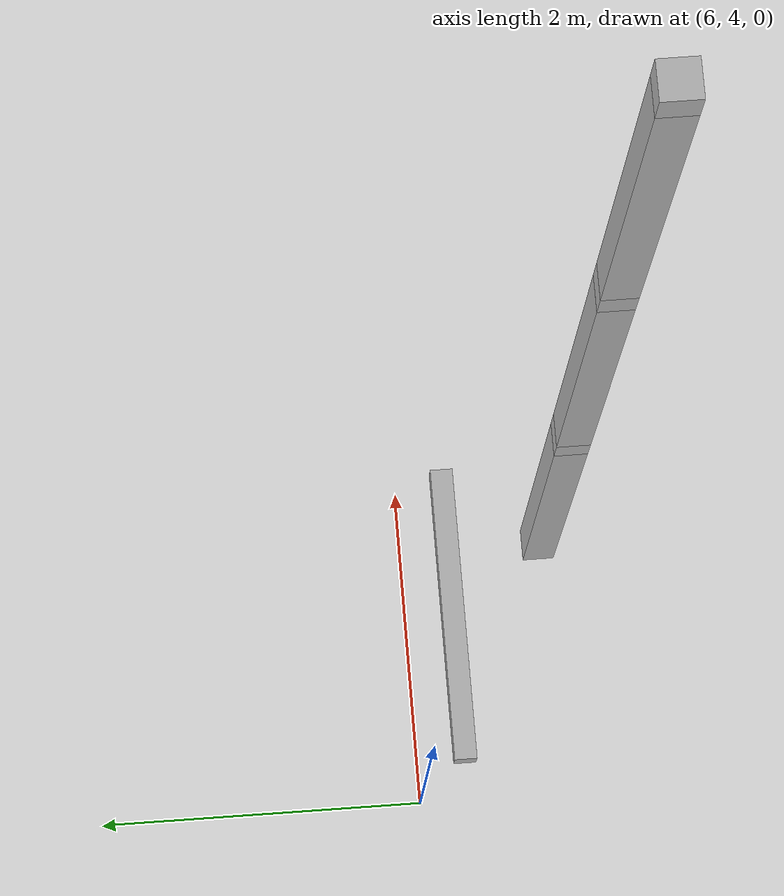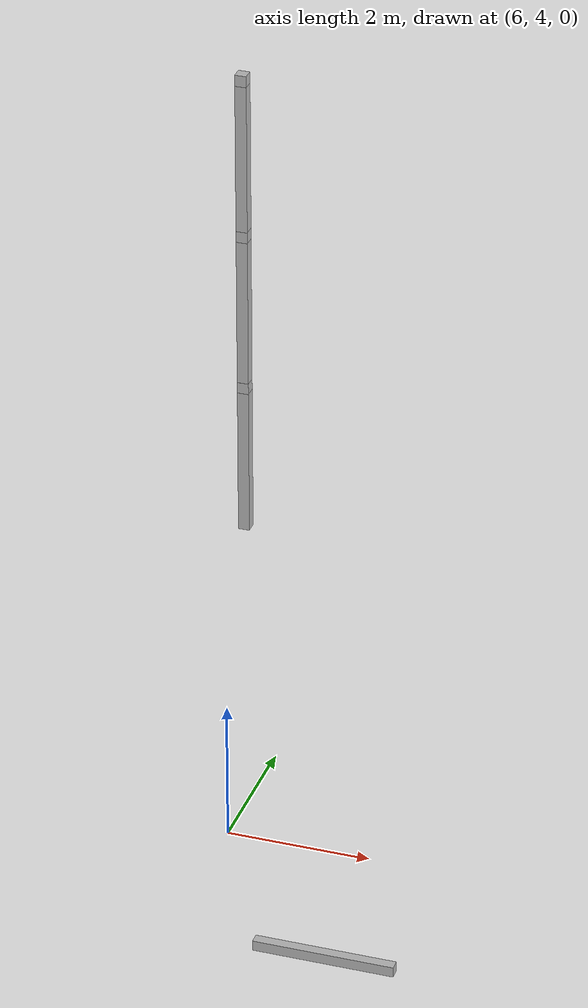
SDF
<sdf version="1.7">
 <world name="default">
  <model name="orthogonal_747_2.000.15_TS">
   <static>1</static>
   <link name="x_link_0_4_6">
    <inertial>
     <mass>1</mass>
     <inertia>
      <ixx>0.166667</ixx>
      <ixy>0</ixy>
      <ixz>0</ixz>
      <iyy>0.166667</iyy>
      <iyz>0</iyz>
      <izz>0.166667</izz>
     </inertia>
    </inertial>
    <pose>13.975 8.6 1.075 0 -0 0</pose>
    <visual name="visual_0">
     <laser_retro>729</laser_retro>
     <geometry><box><size>2 1e-06 0.15</size></box></geometry>
     <material>
      <script><name>Gazebo/Grey</name><uri>file://media/materials/scripts/gazebo.material</uri></script>
      <shader type="pixel"><normal_map>__default__</normal_map></shader>
      <ambient>0.678 0.498 0.659 1</ambient>
      <diffuse>0.7 0.7 0.7 1</diffuse>
      <specular>0.01 0.01 0.01 1</specular>
      <emissive>0 0 0 1</emissive>
     </material>
     <pose>0 -0.075 0 0 -0 0</pose>
     <transparency>1</transparency>
    </visual>
    <visual name="visual_1">
     <laser_retro>730</laser_retro>
     <geometry><box><size>2 1e-06 0.15</size></box></geometry>
     <material>
      <script><name>Gazebo/Grey</name><uri>file://media/materials/scripts/gazebo.material</uri></script>
      <shader type="pixel"><normal_map>__default__</normal_map></shader>
      <ambient>0.447 0.624 0.812 1</ambient>
      <diffuse>0.7 0.7 0.7 1</diffuse>
      <specular>0.01 0.01 0.01 1</specular>
      <emissive>0 0 0 1</emissive>
     </material>
     <pose>0 0.075 0 0 -0 0</pose>
     <transparency>1</transparency>
    </visual>
    <visual name="visual_2">
     <laser_retro>731</laser_retro>
     <geometry><box><size>2 0.15 1e-06</size></box></geometry>
     <material>
      <script><name>Gazebo/Grey</name><uri>file://media/materials/scripts/gazebo.material</uri></script>
      <shader type="pixel"><normal_map>__default__</normal_map></shader>
      <ambient>0.988 0.686 0.243 1</ambient>
      <diffuse>0.7 0.7 0.7 1</diffuse>
      <specular>0.01 0.01 0.01 1</specular>
      <emissive>0 0 0 1</emissive>
     </material>
     <pose>0 0 -0.075 0 -0 0</pose>
     <transparency>1</transparency>
    </visual>
    <visual name="visual_3">
     <laser_retro>732</laser_retro>
     <geometry><box><size>1e-06 0.15 0.15</size></box></geometry>
     <material>
      <script><name>Gazebo/Grey</name><uri>file://media/materials/scripts/gazebo.material</uri></script>
      <shader type="pixel"><normal_map>__default__</normal_map></shader>
      <ambient>0.988 0.914 0.31 1</ambient>
      <diffuse>0.7 0.7 0.7 1</diffuse>
      <specular>0.01 0.01 0.01 1</specular>
      <emissive>0 0 0 1</emissive>
     </material>
     <pose>1 0 0 0 -0 0</pose>
     <transparency>1</transparency>
    </visual>
    <visual name="visual_4">
     <laser_retro>733</laser_retro>
     <geometry><box><size>2 0.15 1e-06</size></box></geometry>
     <material>
      <script><name>Gazebo/Grey</name><uri>file://media/materials/scripts/gazebo.material</uri></script>
      <shader type="pixel"><normal_map>__default__</normal_map></shader>
      <ambient>0.937 0.161 0.161 1</ambient>
      <diffuse>0.7 0.7 0.7 1</diffuse>
      <specular>0.01 0.01 0.01 1</specular>
      <emissive>0 0 0 1</emissive>
     </material>
     <pose>0 0 0.075 0 -0 0</pose>
     <transparency>1</transparency>
    </visual>
    <visual name="visual_5">
     <laser_retro>734</laser_retro>
     <geometry><box><size>1e-06 0.15 0.15</size></box></geometry>
     <material>
      <script><name>Gazebo/Grey</name><uri>file://media/materials/scripts/gazebo.material</uri></script>
      <shader type="pixel"><normal_map>__default__</normal_map></shader>
      <ambient>0.541 0.886 0.204 1</ambient>
      <diffuse>0.7 0.7 0.7 1</diffuse>
      <specular>0.01 0.01 0.01 1</specular>
      <emissive>0 0 0 1</emissive>
     </material>
     <pose>-1 0 0 0 -0 0</pose>
     <transparency>1</transparency>
    </visual>
    <visual name="visual_texture">
     <geometry><box><size>1.9998 0.149985 0.149985</size></box></geometry>
     <material>
      <script>
       <uri>model://BASE_MODELS/simple_block_v2_textured/materials/scripts</uri>
       <uri>model://BASE_MODELS/simple_block_v2_textured/materials/textures</uri>
       <name>metal</name>
      </script>
     </material>
     <laser_retro>735</laser_retro>
    </visual>
    <collision name="collision">
     <geometry><box><size>2 0.15 0.15</size></box></geometry>
     <surface>
      <friction>
       <ode><mu>1</mu><mu2>1</mu2><fdir1>0 0 0</fdir1><slip1>0</slip1><slip2>0</slip2></ode>
       <torsional>
        <coefficient>1</coefficient>
        <patch_radius>0</patch_radius>
        <surface_radius>0</surface_radius>
        <use_patch_radius>1</use_patch_radius>
        <ode><slip>0</slip></ode>
       </torsional>
      </friction>
      <bounce><restitution_coefficient>0</restitution_coefficient><threshold>1e+06</threshold></bounce>
      <contact>
       <collide_without_contact>0</collide_without_contact>
       <collide_without_contact_bitmask>1</collide_without_contact_bitmask>
       <collide_bitmask>1</collide_bitmask>
       <ode>
        <soft_cfm>0</soft_cfm>
        <soft_erp>0.2</soft_erp>
        <kp>1e+13</kp>
        <kd>1</kd>
        <max_vel>0.01</max_vel>
        <min_depth>0</min_depth>
       </ode>
       <bullet>
        <split_impulse>1</split_impulse>
        <split_impulse_penetration_threshold>-0.01</split_impulse_penetration_threshold>
        <soft_cfm>0</soft_cfm>
        <soft_erp>0.2</soft_erp>
        <kp>1e+13</kp>
        <kd>1</kd>
       </bullet>
      </contact>
     </surface>
    </collision>
   </link>
   <link name="u_link_4_4_6">
    <inertial>
     <mass>1</mass>
     <inertia>
      <ixx>0.166667</ixx>
      <ixy>0</ixy>
      <ixz>0</ixz>
      <iyy>0.166667</iyy>
      <iyz>0</iyz>
      <izz>0.166667</izz>
     </inertia>
    </inertial>
    <pose>12.9 8.6 9.675 0 -0 0</pose>
    <visual name="visual_0">
     <laser_retro>4334</laser_retro>
     <geometry><box><size>0.15 1e-06 0.15</size></box></geometry>
     <material>
      <script><name>Gazebo/Grey</name><uri>file://media/materials/scripts/gazebo.material</uri></script>
      <shader type="pixel"><normal_map>__default__</normal_map></shader>
      <ambient>0.678 0.498 0.659 1</ambient>
      <diffuse>0.7 0.7 0.7 1</diffuse>
      <specular>0.01 0.01 0.01 1</specular>
      <emissive>0 0 0 1</emissive>
     </material>
     <pose>0 -0.075 0 0 -0 0</pose>
     <transparency>1</transparency>
    </visual>
    <visual name="visual_1">
     <laser_retro>4335</laser_retro>
     <geometry><box><size>0.15 1e-06 0.15</size></box></geometry>
     <material>
      <script><name>Gazebo/Grey</name><uri>file://media/materials/scripts/gazebo.material</uri></script>
      <shader type="pixel"><normal_map>__default__</normal_map></shader>
      <ambient>0.447 0.624 0.812 1</ambient>
      <diffuse>0.7 0.7 0.7 1</diffuse>
      <specular>0.01 0.01 0.01 1</specular>
      <emissive>0 0 0 1</emissive>
     </material>
     <pose>0 0.075 0 0 -0 0</pose>
     <transparency>1</transparency>
    </visual>
    <visual name="visual_2">
     <laser_retro>4336</laser_retro>
     <geometry><box><size>0.15 0.15 1e-06</size></box></geometry>
     <material>
      <script><name>Gazebo/Grey</name><uri>file://media/materials/scripts/gazebo.material</uri></script>
      <shader type="pixel"><normal_map>__default__</normal_map></shader>
      <ambient>0.988 0.686 0.243 1</ambient>
      <diffuse>0.7 0.7 0.7 1</diffuse>
      <specular>0.01 0.01 0.01 1</specular>
      <emissive>0 0 0 1</emissive>
     </material>
     <pose>0 0 -0.075 0 -0 0</pose>
     <transparency>1</transparency>
    </visual>
    <visual name="visual_3">
     <laser_retro>4337</laser_retro>
     <geometry><box><size>1e-06 0.15 0.15</size></box></geometry>
     <material>
      <script><name>Gazebo/Grey</name><uri>file://media/materials/scripts/gazebo.material</uri></script>
      <shader type="pixel"><normal_map>__default__</normal_map></shader>
      <ambient>0.988 0.914 0.31 1</ambient>
      <diffuse>0.7 0.7 0.7 1</diffuse>
      <specular>0.01 0.01 0.01 1</specular>
      <emissive>0 0 0 1</emissive>
     </material>
     <pose>0.075 0 0 0 -0 0</pose>
     <transparency>1</transparency>
    </visual>
    <visual name="visual_4">
     <laser_retro>4338</laser_retro>
     <geometry><box><size>0.15 0.15 1e-06</size></box></geometry>
     <material>
      <script><name>Gazebo/Grey</name><uri>file://media/materials/scripts/gazebo.material</uri></script>
      <shader type="pixel"><normal_map>__default__</normal_map></shader>
      <ambient>0.937 0.161 0.161 1</ambient>
      <diffuse>0.7 0.7 0.7 1</diffuse>
      <specular>0.01 0.01 0.01 1</specular>
      <emissive>0 0 0 1</emissive>
     </material>
     <pose>0 0 0.075 0 -0 0</pose>
     <transparency>1</transparency>
    </visual>
    <visual name="visual_5">
     <laser_retro>4339</laser_retro>
     <geometry><box><size>1e-06 0.15 0.15</size></box></geometry>
     <material>
      <script><name>Gazebo/Grey</name><uri>file://media/materials/scripts/gazebo.material</uri></script>
      <shader type="pixel"><normal_map>__default__</normal_map></shader>
      <ambient>0.541 0.886 0.204 1</ambient>
      <diffuse>0.7 0.7 0.7 1</diffuse>
      <specular>0.01 0.01 0.01 1</specular>
      <emissive>0 0 0 1</emissive>
     </material>
     <pose>-0.075 0 0 0 -0 0</pose>
     <transparency>1</transparency>
    </visual>
    <visual name="visual_texture">
     <geometry><box><size>0.149985 0.149985 0.149985</size></box></geometry>
     <material>
      <script>
       <uri>model://BASE_MODELS/simple_block_v2_textured/materials/scripts</uri>
       <uri>model://BASE_MODELS/simple_block_v2_textured/materials/textures</uri>
       <name>metal</name>
      </script>
     </material>
     <laser_retro>4340</laser_retro>
    </visual>
    <collision name="collision">
     <geometry><box><size>0.15 0.15 0.15</size></box></geometry>
     <surface>
      <friction>
       <ode><mu>1</mu><mu2>1</mu2><fdir1>0 0 0</fdir1><slip1>0</slip1><slip2>0</slip2></ode>
       <torsional>
        <coefficient>1</coefficient>
        <patch_radius>0</patch_radius>
        <surface_radius>0</surface_radius>
        <use_patch_radius>1</use_patch_radius>
        <ode><slip>0</slip></ode>
       </torsional>
      </friction>
      <bounce><restitution_coefficient>0</restitution_coefficient><threshold>1e+06</threshold></bounce>
      <contact>
       <collide_without_contact>0</collide_without_contact>
       <collide_without_contact_bitmask>1</collide_without_contact_bitmask>
       <collide_bitmask>1</collide_bitmask>
       <ode>
        <soft_cfm>0</soft_cfm>
        <soft_erp>0.2</soft_erp>
        <kp>1e+13</kp>
        <kd>1</kd>
        <max_vel>0.01</max_vel>
        <min_depth>0</min_depth>
       </ode>
       <bullet>
        <split_impulse>1</split_impulse>
        <split_impulse_penetration_threshold>-0.01</split_impulse_penetration_threshold>
        <soft_cfm>0</soft_cfm>
        <soft_erp>0.2</soft_erp>
        <kp>1e+13</kp>
        <kd>1</kd>
       </bullet>
      </contact>
     </surface>
    </collision>
   </link>
   <link name="z_link_4_4_6">
    <inertial>
     <mass>1</mass>
     <inertia>
      <ixx>0.166667</ixx>
      <ixy>0</ixy>
      <ixz>0</ixz>
      <iyy>0.166667</iyy>
      <iyz>0</iyz>
      <izz>0.166667</izz>
     </inertia>
    </inertial>
    <pose>12.9 8.6 8.6 0 -0 0</pose>
    <visual name="visual_0">
     <laser_retro>4341</laser_retro>
     <geometry><box><size>0.15 1e-06 2</size></box></geometry>
     <material>
      <script><name>Gazebo/Grey</name><uri>file://media/materials/scripts/gazebo.material</uri></script>
      <shader type="pixel"><normal_map>__default__</normal_map></shader>
      <ambient>0.678 0.498 0.659 1</ambient>
      <diffuse>0.7 0.7 0.7 1</diffuse>
      <specular>0.01 0.01 0.01 1</specular>
      <emissive>0 0 0 1</emissive>
     </material>
     <pose>0 -0.075 0 0 -0 0</pose>
     <transparency>1</transparency>
    </visual>
    <visual name="visual_1">
     <laser_retro>4342</laser_retro>
     <geometry><box><size>0.15 1e-06 2</size></box></geometry>
     <material>
      <script><name>Gazebo/Grey</name><uri>file://media/materials/scripts/gazebo.material</uri></script>
      <shader type="pixel"><normal_map>__default__</normal_map></shader>
      <ambient>0.447 0.624 0.812 1</ambient>
      <diffuse>0.7 0.7 0.7 1</diffuse>
      <specular>0.01 0.01 0.01 1</specular>
      <emissive>0 0 0 1</emissive>
     </material>
     <pose>0 0.075 0 0 -0 0</pose>
     <transparency>1</transparency>
    </visual>
    <visual name="visual_2">
     <laser_retro>4343</laser_retro>
     <geometry><box><size>0.15 0.15 1e-06</size></box></geometry>
     <material>
      <script><name>Gazebo/Grey</name><uri>file://media/materials/scripts/gazebo.material</uri></script>
      <shader type="pixel"><normal_map>__default__</normal_map></shader>
      <ambient>0.988 0.686 0.243 1</ambient>
      <diffuse>0.7 0.7 0.7 1</diffuse>
      <specular>0.01 0.01 0.01 1</specular>
      <emissive>0 0 0 1</emissive>
     </material>
     <pose>0 0 -1 0 -0 0</pose>
     <transparency>1</transparency>
    </visual>
    <visual name="visual_3">
     <laser_retro>4344</laser_retro>
     <geometry><box><size>1e-06 0.15 2</size></box></geometry>
     <material>
      <script><name>Gazebo/Grey</name><uri>file://media/materials/scripts/gazebo.material</uri></script>
      <shader type="pixel"><normal_map>__default__</normal_map></shader>
      <ambient>0.988 0.914 0.31 1</ambient>
      <diffuse>0.7 0.7 0.7 1</diffuse>
      <specular>0.01 0.01 0.01 1</specular>
      <emissive>0 0 0 1</emissive>
     </material>
     <pose>0.075 0 0 0 -0 0</pose>
     <transparency>1</transparency>
    </visual>
    <visual name="visual_4">
     <laser_retro>4345</laser_retro>
     <geometry><box><size>0.15 0.15 1e-06</size></box></geometry>
     <material>
      <script><name>Gazebo/Grey</name><uri>file://media/materials/scripts/gazebo.material</uri></script>
      <shader type="pixel"><normal_map>__default__</normal_map></shader>
      <ambient>0.937 0.161 0.161 1</ambient>
      <diffuse>0.7 0.7 0.7 1</diffuse>
      <specular>0.01 0.01 0.01 1</specular>
      <emissive>0 0 0 1</emissive>
     </material>
     <pose>0 0 1 0 -0 0</pose>
     <transparency>1</transparency>
    </visual>
    <visual name="visual_5">
     <laser_retro>4346</laser_retro>
     <geometry><box><size>1e-06 0.15 2</size></box></geometry>
     <material>
      <script><name>Gazebo/Grey</name><uri>file://media/materials/scripts/gazebo.material</uri></script>
      <shader type="pixel"><normal_map>__default__</normal_map></shader>
      <ambient>0.541 0.886 0.204 1</ambient>
      <diffuse>0.7 0.7 0.7 1</diffuse>
      <specular>0.01 0.01 0.01 1</specular>
      <emissive>0 0 0 1</emissive>
     </material>
     <pose>-0.075 0 0 0 -0 0</pose>
     <transparency>1</transparency>
    </visual>
    <visual name="visual_texture">
     <geometry><box><size>0.149985 0.149985 1.9998</size></box></geometry>
     <material>
      <script>
       <uri>model://BASE_MODELS/simple_block_v2_textured/materials/scripts</uri>
       <uri>model://BASE_MODELS/simple_block_v2_textured/materials/textures</uri>
       <name>metal</name>
      </script>
     </material>
     <laser_retro>4347</laser_retro>
    </visual>
    <collision name="collision">
     <geometry><box><size>0.15 0.15 2</size></box></geometry>
     <surface>
      <friction>
       <ode><mu>1</mu><mu2>1</mu2><fdir1>0 0 0</fdir1><slip1>0</slip1><slip2>0</slip2></ode>
       <torsional>
        <coefficient>1</coefficient>
        <patch_radius>0</patch_radius>
        <surface_radius>0</surface_radius>
        <use_patch_radius>1</use_patch_radius>
        <ode><slip>0</slip></ode>
       </torsional>
      </friction>
      <bounce><restitution_coefficient>0</restitution_coefficient><threshold>1e+06</threshold></bounce>
      <contact>
       <collide_without_contact>0</collide_without_contact>
       <collide_without_contact_bitmask>1</collide_without_contact_bitmask>
       <collide_bitmask>1</collide_bitmask>
       <ode>
        <soft_cfm>0</soft_cfm>
        <soft_erp>0.2</soft_erp>
        <kp>1e+13</kp>
        <kd>1</kd>
        <max_vel>0.01</max_vel>
        <min_depth>0</min_depth>
       </ode>
       <bullet>
        <split_impulse>1</split_impulse>
        <split_impulse_penetration_threshold>-0.01</split_impulse_penetration_threshold>
        <soft_cfm>0</soft_cfm>
        <soft_erp>0.2</soft_erp>
        <kp>1e+13</kp>
        <kd>1</kd>
       </bullet>
      </contact>
     </surface>
    </collision>
   </link>
   <link name="u_link_5_4_6">
    <inertial>
     <mass>1</mass>
     <inertia>
      <ixx>0.166667</ixx>
      <ixy>0</ixy>
      <ixz>0</ixz>
      <iyy>0.166667</iyy>
      <iyz>0</iyz>
      <izz>0.166667</izz>
     </inertia>
    </inertial>
    <pose>12.9 8.6 11.825 0 -0 0</pose>
    <visual name="visual_0">
     <laser_retro>5237</laser_retro>
     <geometry><box><size>0.15 1e-06 0.15</size></box></geometry>
     <material>
      <script><name>Gazebo/Grey</name><uri>file://media/materials/scripts/gazebo.material</uri></script>
      <shader type="pixel"><normal_map>__default__</normal_map></shader>
      <ambient>0.678 0.498 0.659 1</ambient>
      <diffuse>0.7 0.7 0.7 1</diffuse>
      <specular>0.01 0.01 0.01 1</specular>
      <emissive>0 0 0 1</emissive>
     </material>
     <pose>0 -0.075 0 0 -0 0</pose>
     <transparency>1</transparency>
    </visual>
    <visual name="visual_1">
     <laser_retro>5238</laser_retro>
     <geometry><box><size>0.15 1e-06 0.15</size></box></geometry>
     <material>
      <script><name>Gazebo/Grey</name><uri>file://media/materials/scripts/gazebo.material</uri></script>
      <shader type="pixel"><normal_map>__default__</normal_map></shader>
      <ambient>0.447 0.624 0.812 1</ambient>
      <diffuse>0.7 0.7 0.7 1</diffuse>
      <specular>0.01 0.01 0.01 1</specular>
      <emissive>0 0 0 1</emissive>
     </material>
     <pose>0 0.075 0 0 -0 0</pose>
     <transparency>1</transparency>
    </visual>
    <visual name="visual_2">
     <laser_retro>5239</laser_retro>
     <geometry><box><size>0.15 0.15 1e-06</size></box></geometry>
     <material>
      <script><name>Gazebo/Grey</name><uri>file://media/materials/scripts/gazebo.material</uri></script>
      <shader type="pixel"><normal_map>__default__</normal_map></shader>
      <ambient>0.988 0.686 0.243 1</ambient>
      <diffuse>0.7 0.7 0.7 1</diffuse>
      <specular>0.01 0.01 0.01 1</specular>
      <emissive>0 0 0 1</emissive>
     </material>
     <pose>0 0 -0.075 0 -0 0</pose>
     <transparency>1</transparency>
    </visual>
    <visual name="visual_3">
     <laser_retro>5240</laser_retro>
     <geometry><box><size>1e-06 0.15 0.15</size></box></geometry>
     <material>
      <script><name>Gazebo/Grey</name><uri>file://media/materials/scripts/gazebo.material</uri></script>
      <shader type="pixel"><normal_map>__default__</normal_map></shader>
      <ambient>0.988 0.914 0.31 1</ambient>
      <diffuse>0.7 0.7 0.7 1</diffuse>
      <specular>0.01 0.01 0.01 1</specular>
      <emissive>0 0 0 1</emissive>
     </material>
     <pose>0.075 0 0 0 -0 0</pose>
     <transparency>1</transparency>
    </visual>
    <visual name="visual_4">
     <laser_retro>5241</laser_retro>
     <geometry><box><size>0.15 0.15 1e-06</size></box></geometry>
     <material>
      <script><name>Gazebo/Grey</name><uri>file://media/materials/scripts/gazebo.material</uri></script>
      <shader type="pixel"><normal_map>__default__</normal_map></shader>
      <ambient>0.937 0.161 0.161 1</ambient>
      <diffuse>0.7 0.7 0.7 1</diffuse>
      <specular>0.01 0.01 0.01 1</specular>
      <emissive>0 0 0 1</emissive>
     </material>
     <pose>0 0 0.075 0 -0 0</pose>
     <transparency>1</transparency>
    </visual>
    <visual name="visual_5">
     <laser_retro>5242</laser_retro>
     <geometry><box><size>1e-06 0.15 0.15</size></box></geometry>
     <material>
      <script><name>Gazebo/Grey</name><uri>file://media/materials/scripts/gazebo.material</uri></script>
      <shader type="pixel"><normal_map>__default__</normal_map></shader>
      <ambient>0.541 0.886 0.204 1</ambient>
      <diffuse>0.7 0.7 0.7 1</diffuse>
      <specular>0.01 0.01 0.01 1</specular>
      <emissive>0 0 0 1</emissive>
     </material>
     <pose>-0.075 0 0 0 -0 0</pose>
     <transparency>1</transparency>
    </visual>
    <visual name="visual_texture">
     <geometry><box><size>0.149985 0.149985 0.149985</size></box></geometry>
     <material>
      <script>
       <uri>model://BASE_MODELS/simple_block_v2_textured/materials/scripts</uri>
       <uri>model://BASE_MODELS/simple_block_v2_textured/materials/textures</uri>
       <name>metal</name>
      </script>
     </material>
     <laser_retro>5243</laser_retro>
    </visual>
    <collision name="collision">
     <geometry><box><size>0.15 0.15 0.15</size></box></geometry>
     <surface>
      <friction>
       <ode><mu>1</mu><mu2>1</mu2><fdir1>0 0 0</fdir1><slip1>0</slip1><slip2>0</slip2></ode>
       <torsional>
        <coefficient>1</coefficient>
        <patch_radius>0</patch_radius>
        <surface_radius>0</surface_radius>
        <use_patch_radius>1</use_patch_radius>
        <ode><slip>0</slip></ode>
       </torsional>
      </friction>
      <bounce><restitution_coefficient>0</restitution_coefficient><threshold>1e+06</threshold></bounce>
      <contact>
       <collide_without_contact>0</collide_without_contact>
       <collide_without_contact_bitmask>1</collide_without_contact_bitmask>
       <collide_bitmask>1</collide_bitmask>
       <ode>
        <soft_cfm>0</soft_cfm>
        <soft_erp>0.2</soft_erp>
        <kp>1e+13</kp>
        <kd>1</kd>
        <max_vel>0.01</max_vel>
        <min_depth>0</min_depth>
       </ode>
       <bullet>
        <split_impulse>1</split_impulse>
        <split_impulse_penetration_threshold>-0.01</split_impulse_penetration_threshold>
        <soft_cfm>0</soft_cfm>
        <soft_erp>0.2</soft_erp>
        <kp>1e+13</kp>
        <kd>1</kd>
       </bullet>
      </contact>
     </surface>
    </collision>
   </link>
   <link name="z_link_5_4_6">
    <inertial>
     <mass>1</mass>
     <inertia>
      <ixx>0.166667</ixx>
      <ixy>0</ixy>
      <ixz>0</ixz>
      <iyy>0.166667</iyy>
      <iyz>0</iyz>
      <izz>0.166667</izz>
     </inertia>
    </inertial>
    <pose>12.9 8.6 10.75 0 -0 0</pose>
    <visual name="visual_0">
     <laser_retro>5244</laser_retro>
     <geometry><box><size>0.15 1e-06 2</size></box></geometry>
     <material>
      <script><name>Gazebo/Grey</name><uri>file://media/materials/scripts/gazebo.material</uri></script>
      <shader type="pixel"><normal_map>__default__</normal_map></shader>
      <ambient>0.678 0.498 0.659 1</ambient>
      <diffuse>0.7 0.7 0.7 1</diffuse>
      <specular>0.01 0.01 0.01 1</specular>
      <emissive>0 0 0 1</emissive>
     </material>
     <pose>0 -0.075 0 0 -0 0</pose>
     <transparency>1</transparency>
    </visual>
    <visual name="visual_1">
     <laser_retro>5245</laser_retro>
     <geometry><box><size>0.15 1e-06 2</size></box></geometry>
     <material>
      <script><name>Gazebo/Grey</name><uri>file://media/materials/scripts/gazebo.material</uri></script>
      <shader type="pixel"><normal_map>__default__</normal_map></shader>
      <ambient>0.447 0.624 0.812 1</ambient>
      <diffuse>0.7 0.7 0.7 1</diffuse>
      <specular>0.01 0.01 0.01 1</specular>
      <emissive>0 0 0 1</emissive>
     </material>
     <pose>0 0.075 0 0 -0 0</pose>
     <transparency>1</transparency>
    </visual>
    <visual name="visual_2">
     <laser_retro>5246</laser_retro>
     <geometry><box><size>0.15 0.15 1e-06</size></box></geometry>
     <material>
      <script><name>Gazebo/Grey</name><uri>file://media/materials/scripts/gazebo.material</uri></script>
      <shader type="pixel"><normal_map>__default__</normal_map></shader>
      <ambient>0.988 0.686 0.243 1</ambient>
      <diffuse>0.7 0.7 0.7 1</diffuse>
      <specular>0.01 0.01 0.01 1</specular>
      <emissive>0 0 0 1</emissive>
     </material>
     <pose>0 0 -1 0 -0 0</pose>
     <transparency>1</transparency>
    </visual>
    <visual name="visual_3">
     <laser_retro>5247</laser_retro>
     <geometry><box><size>1e-06 0.15 2</size></box></geometry>
     <material>
      <script><name>Gazebo/Grey</name><uri>file://media/materials/scripts/gazebo.material</uri></script>
      <shader type="pixel"><normal_map>__default__</normal_map></shader>
      <ambient>0.988 0.914 0.31 1</ambient>
      <diffuse>0.7 0.7 0.7 1</diffuse>
      <specular>0.01 0.01 0.01 1</specular>
      <emissive>0 0 0 1</emissive>
     </material>
     <pose>0.075 0 0 0 -0 0</pose>
     <transparency>1</transparency>
    </visual>
    <visual name="visual_4">
     <laser_retro>5248</laser_retro>
     <geometry><box><size>0.15 0.15 1e-06</size></box></geometry>
     <material>
      <script><name>Gazebo/Grey</name><uri>file://media/materials/scripts/gazebo.material</uri></script>
      <shader type="pixel"><normal_map>__default__</normal_map></shader>
      <ambient>0.937 0.161 0.161 1</ambient>
      <diffuse>0.7 0.7 0.7 1</diffuse>
      <specular>0.01 0.01 0.01 1</specular>
      <emissive>0 0 0 1</emissive>
     </material>
     <pose>0 0 1 0 -0 0</pose>
     <transparency>1</transparency>
    </visual>
    <visual name="visual_5">
     <laser_retro>5249</laser_retro>
     <geometry><box><size>1e-06 0.15 2</size></box></geometry>
     <material>
      <script><name>Gazebo/Grey</name><uri>file://media/materials/scripts/gazebo.material</uri></script>
      <shader type="pixel"><normal_map>__default__</normal_map></shader>
      <ambient>0.541 0.886 0.204 1</ambient>
      <diffuse>0.7 0.7 0.7 1</diffuse>
      <specular>0.01 0.01 0.01 1</specular>
      <emissive>0 0 0 1</emissive>
     </material>
     <pose>-0.075 0 0 0 -0 0</pose>
     <transparency>1</transparency>
    </visual>
    <visual name="visual_texture">
     <geometry><box><size>0.149985 0.149985 1.9998</size></box></geometry>
     <material>
      <script>
       <uri>model://BASE_MODELS/simple_block_v2_textured/materials/scripts</uri>
       <uri>model://BASE_MODELS/simple_block_v2_textured/materials/textures</uri>
       <name>metal</name>
      </script>
     </material>
     <laser_retro>5250</laser_retro>
    </visual>
    <collision name="collision">
     <geometry><box><size>0.15 0.15 2</size></box></geometry>
     <surface>
      <friction>
       <ode><mu>1</mu><mu2>1</mu2><fdir1>0 0 0</fdir1><slip1>0</slip1><slip2>0</slip2></ode>
       <torsional>
        <coefficient>1</coefficient>
        <patch_radius>0</patch_radius>
        <surface_radius>0</surface_radius>
        <use_patch_radius>1</use_patch_radius>
        <ode><slip>0</slip></ode>
       </torsional>
      </friction>
      <bounce><restitution_coefficient>0</restitution_coefficient><threshold>1e+06</threshold></bounce>
      <contact>
       <collide_without_contact>0</collide_without_contact>
       <collide_without_contact_bitmask>1</collide_without_contact_bitmask>
       <collide_bitmask>1</collide_bitmask>
       <ode>
        <soft_cfm>0</soft_cfm>
        <soft_erp>0.2</soft_erp>
        <kp>1e+13</kp>
        <kd>1</kd>
        <max_vel>0.01</max_vel>
        <min_depth>0</min_depth>
       </ode>
       <bullet>
        <split_impulse>1</split_impulse>
        <split_impulse_penetration_threshold>-0.01</split_impulse_penetration_threshold>
        <soft_cfm>0</soft_cfm>
        <soft_erp>0.2</soft_erp>
        <kp>1e+13</kp>
        <kd>1</kd>
       </bullet>
      </contact>
     </surface>
    </collision>
   </link>
   <link name="u_link_6_4_6">
    <inertial>
     <mass>1</mass>
     <inertia>
      <ixx>0.166667</ixx>
      <ixy>0</ixy>
      <ixz>0</ixz>
      <iyy>0.166667</iyy>
      <iyz>0</iyz>
      <izz>0.166667</izz>
     </inertia>
    </inertial>
    <pose>12.9 8.6 13.975 0 -0 0</pose>
    <visual name="visual_0">
     <laser_retro>6266</laser_retro>
     <geometry><box><size>0.15 1e-06 0.15</size></box></geometry>
     <material>
      <script><name>Gazebo/Grey</name><uri>file://media/materials/scripts/gazebo.material</uri></script>
      <shader type="pixel"><normal_map>__default__</normal_map></shader>
      <ambient>0.678 0.498 0.659 1</ambient>
      <diffuse>0.7 0.7 0.7 1</diffuse>
      <specular>0.01 0.01 0.01 1</specular>
      <emissive>0 0 0 1</emissive>
     </material>
     <pose>0 -0.075 0 0 -0 0</pose>
     <transparency>1</transparency>
    </visual>
    <visual name="visual_1">
     <laser_retro>6267</laser_retro>
     <geometry><box><size>0.15 1e-06 0.15</size></box></geometry>
     <material>
      <script><name>Gazebo/Grey</name><uri>file://media/materials/scripts/gazebo.material</uri></script>
      <shader type="pixel"><normal_map>__default__</normal_map></shader>
      <ambient>0.447 0.624 0.812 1</ambient>
      <diffuse>0.7 0.7 0.7 1</diffuse>
      <specular>0.01 0.01 0.01 1</specular>
      <emissive>0 0 0 1</emissive>
     </material>
     <pose>0 0.075 0 0 -0 0</pose>
     <transparency>1</transparency>
    </visual>
    <visual name="visual_2">
     <laser_retro>6268</laser_retro>
     <geometry><box><size>0.15 0.15 1e-06</size></box></geometry>
     <material>
      <script><name>Gazebo/Grey</name><uri>file://media/materials/scripts/gazebo.material</uri></script>
      <shader type="pixel"><normal_map>__default__</normal_map></shader>
      <ambient>0.988 0.686 0.243 1</ambient>
      <diffuse>0.7 0.7 0.7 1</diffuse>
      <specular>0.01 0.01 0.01 1</specular>
      <emissive>0 0 0 1</emissive>
     </material>
     <pose>0 0 -0.075 0 -0 0</pose>
     <transparency>1</transparency>
    </visual>
    <visual name="visual_3">
     <laser_retro>6269</laser_retro>
     <geometry><box><size>1e-06 0.15 0.15</size></box></geometry>
     <material>
      <script><name>Gazebo/Grey</name><uri>file://media/materials/scripts/gazebo.material</uri></script>
      <shader type="pixel"><normal_map>__default__</normal_map></shader>
      <ambient>0.988 0.914 0.31 1</ambient>
      <diffuse>0.7 0.7 0.7 1</diffuse>
      <specular>0.01 0.01 0.01 1</specular>
      <emissive>0 0 0 1</emissive>
     </material>
     <pose>0.075 0 0 0 -0 0</pose>
     <transparency>1</transparency>
    </visual>
    <visual name="visual_4">
     <laser_retro>6270</laser_retro>
     <geometry><box><size>0.15 0.15 1e-06</size></box></geometry>
     <material>
      <script><name>Gazebo/Grey</name><uri>file://media/materials/scripts/gazebo.material</uri></script>
      <shader type="pixel"><normal_map>__default__</normal_map></shader>
      <ambient>0.937 0.161 0.161 1</ambient>
      <diffuse>0.7 0.7 0.7 1</diffuse>
      <specular>0.01 0.01 0.01 1</specular>
      <emissive>0 0 0 1</emissive>
     </material>
     <pose>0 0 0.075 0 -0 0</pose>
     <transparency>1</transparency>
    </visual>
    <visual name="visual_5">
     <laser_retro>6271</laser_retro>
     <geometry><box><size>1e-06 0.15 0.15</size></box></geometry>
     <material>
      <script><name>Gazebo/Grey</name><uri>file://media/materials/scripts/gazebo.material</uri></script>
      <shader type="pixel"><normal_map>__default__</normal_map></shader>
      <ambient>0.541 0.886 0.204 1</ambient>
      <diffuse>0.7 0.7 0.7 1</diffuse>
      <specular>0.01 0.01 0.01 1</specular>
      <emissive>0 0 0 1</emissive>
     </material>
     <pose>-0.075 0 0 0 -0 0</pose>
     <transparency>1</transparency>
    </visual>
    <visual name="visual_texture">
     <geometry><box><size>0.149985 0.149985 0.149985</size></box></geometry>
     <material>
      <script>
       <uri>model://BASE_MODELS/simple_block_v2_textured/materials/scripts</uri>
       <uri>model://BASE_MODELS/simple_block_v2_textured/materials/textures</uri>
       <name>metal</name>
      </script>
     </material>
     <laser_retro>6272</laser_retro>
    </visual>
    <collision name="collision">
     <geometry><box><size>0.15 0.15 0.15</size></box></geometry>
     <surface>
      <friction>
       <ode><mu>1</mu><mu2>1</mu2><fdir1>0 0 0</fdir1><slip1>0</slip1><slip2>0</slip2></ode>
       <torsional>
        <coefficient>1</coefficient>
        <patch_radius>0</patch_radius>
        <surface_radius>0</surface_radius>
        <use_patch_radius>1</use_patch_radius>
        <ode><slip>0</slip></ode>
       </torsional>
      </friction>
      <bounce><restitution_coefficient>0</restitution_coefficient><threshold>1e+06</threshold></bounce>
      <contact>
       <collide_without_contact>0</collide_without_contact>
       <collide_without_contact_bitmask>1</collide_without_contact_bitmask>
       <collide_bitmask>1</collide_bitmask>
       <ode>
        <soft_cfm>0</soft_cfm>
        <soft_erp>0.2</soft_erp>
        <kp>1e+13</kp>
        <kd>1</kd>
        <max_vel>0.01</max_vel>
        <min_depth>0</min_depth>
       </ode>
       <bullet>
        <split_impulse>1</split_impulse>
        <split_impulse_penetration_threshold>-0.01</split_impulse_penetration_threshold>
        <soft_cfm>0</soft_cfm>
        <soft_erp>0.2</soft_erp>
        <kp>1e+13</kp>
        <kd>1</kd>
       </bullet>
      </contact>
     </surface>
    </collision>
   </link>
   <link name="z_link_6_4_6">
    <inertial>
     <mass>1</mass>
     <inertia>
      <ixx>0.166667</ixx>
      <ixy>0</ixy>
      <ixz>0</ixz>
      <iyy>0.166667</iyy>
      <iyz>0</iyz>
      <izz>0.166667</izz>
     </inertia>
    </inertial>
    <pose>12.9 8.6 12.9 0 -0 0</pose>
    <visual name="visual_0">
     <laser_retro>6273</laser_retro>
     <geometry><box><size>0.15 1e-06 2</size></box></geometry>
     <material>
      <script><name>Gazebo/Grey</name><uri>file://media/materials/scripts/gazebo.material</uri></script>
      <shader type="pixel"><normal_map>__default__</normal_map></shader>
      <ambient>0.678 0.498 0.659 1</ambient>
      <diffuse>0.7 0.7 0.7 1</diffuse>
      <specular>0.01 0.01 0.01 1</specular>
      <emissive>0 0 0 1</emissive>
     </material>
     <pose>0 -0.075 0 0 -0 0</pose>
     <transparency>1</transparency>
    </visual>
    <visual name="visual_1">
     <laser_retro>6274</laser_retro>
     <geometry><box><size>0.15 1e-06 2</size></box></geometry>
     <material>
      <script><name>Gazebo/Grey</name><uri>file://media/materials/scripts/gazebo.material</uri></script>
      <shader type="pixel"><normal_map>__default__</normal_map></shader>
      <ambient>0.447 0.624 0.812 1</ambient>
      <diffuse>0.7 0.7 0.7 1</diffuse>
      <specular>0.01 0.01 0.01 1</specular>
      <emissive>0 0 0 1</emissive>
     </material>
     <pose>0 0.075 0 0 -0 0</pose>
     <transparency>1</transparency>
    </visual>
    <visual name="visual_2">
     <laser_retro>6275</laser_retro>
     <geometry><box><size>0.15 0.15 1e-06</size></box></geometry>
     <material>
      <script><name>Gazebo/Grey</name><uri>file://media/materials/scripts/gazebo.material</uri></script>
      <shader type="pixel"><normal_map>__default__</normal_map></shader>
      <ambient>0.988 0.686 0.243 1</ambient>
      <diffuse>0.7 0.7 0.7 1</diffuse>
      <specular>0.01 0.01 0.01 1</specular>
      <emissive>0 0 0 1</emissive>
     </material>
     <pose>0 0 -1 0 -0 0</pose>
     <transparency>1</transparency>
    </visual>
    <visual name="visual_3">
     <laser_retro>6276</laser_retro>
     <geometry><box><size>1e-06 0.15 2</size></box></geometry>
     <material>
      <script><name>Gazebo/Grey</name><uri>file://media/materials/scripts/gazebo.material</uri></script>
      <shader type="pixel"><normal_map>__default__</normal_map></shader>
      <ambient>0.988 0.914 0.31 1</ambient>
      <diffuse>0.7 0.7 0.7 1</diffuse>
      <specular>0.01 0.01 0.01 1</specular>
      <emissive>0 0 0 1</emissive>
     </material>
     <pose>0.075 0 0 0 -0 0</pose>
     <transparency>1</transparency>
    </visual>
    <visual name="visual_4">
     <laser_retro>6277</laser_retro>
     <geometry><box><size>0.15 0.15 1e-06</size></box></geometry>
     <material>
      <script><name>Gazebo/Grey</name><uri>file://media/materials/scripts/gazebo.material</uri></script>
      <shader type="pixel"><normal_map>__default__</normal_map></shader>
      <ambient>0.937 0.161 0.161 1</ambient>
      <diffuse>0.7 0.7 0.7 1</diffuse>
      <specular>0.01 0.01 0.01 1</specular>
      <emissive>0 0 0 1</emissive>
     </material>
     <pose>0 0 1 0 -0 0</pose>
     <transparency>1</transparency>
    </visual>
    <visual name="visual_5">
     <laser_retro>6278</laser_retro>
     <geometry><box><size>1e-06 0.15 2</size></box></geometry>
     <material>
      <script><name>Gazebo/Grey</name><uri>file://media/materials/scripts/gazebo.material</uri></script>
      <shader type="pixel"><normal_map>__default__</normal_map></shader>
      <ambient>0.541 0.886 0.204 1</ambient>
      <diffuse>0.7 0.7 0.7 1</diffuse>
      <specular>0.01 0.01 0.01 1</specular>
      <emissive>0 0 0 1</emissive>
     </material>
     <pose>-0.075 0 0 0 -0 0</pose>
     <transparency>1</transparency>
    </visual>
    <visual name="visual_texture">
     <geometry><box><size>0.149985 0.149985 1.9998</size></box></geometry>
     <material>
      <script>
       <uri>model://BASE_MODELS/simple_block_v2_textured/materials/scripts</uri>
       <uri>model://BASE_MODELS/simple_block_v2_textured/materials/textures</uri>
       <name>metal</name>
      </script>
     </material>
     <laser_retro>6279</laser_retro>
    </visual>
    <collision name="collision">
     <geometry><box><size>0.15 0.15 2</size></box></geometry>
     <surface>
      <friction>
       <ode><mu>1</mu><mu2>1</mu2><fdir1>0 0 0</fdir1><slip1>0</slip1><slip2>0</slip2></ode>
       <torsional>
        <coefficient>1</coefficient>
        <patch_radius>0</patch_radius>
        <surface_radius>0</surface_radius>
        <use_patch_radius>1</use_patch_radius>
        <ode><slip>0</slip></ode>
       </torsional>
      </friction>
      <bounce><restitution_coefficient>0</restitution_coefficient><threshold>1e+06</threshold></bounce>
      <contact>
       <collide_without_contact>0</collide_without_contact>
       <collide_without_contact_bitmask>1</collide_without_contact_bitmask>
       <collide_bitmask>1</collide_bitmask>
       <ode>
        <soft_cfm>0</soft_cfm>
        <soft_erp>0.2</soft_erp>
        <kp>1e+13</kp>
        <kd>1</kd>
        <max_vel>0.01</max_vel>
        <min_depth>0</min_depth>
       </ode>
       <bullet>
        <split_impulse>1</split_impulse>
        <split_impulse_penetration_threshold>-0.01</split_impulse_penetration_threshold>
        <soft_cfm>0</soft_cfm>
        <soft_erp>0.2</soft_erp>
        <kp>1e+13</kp>
        <kd>1</kd>
       </bullet>
      </contact>
     </surface>
    </collision>
   </link>
   <pose>-6.47624 -5 -2.5 0 -0 0</pose>
  </model>
 </world>
</sdf>
